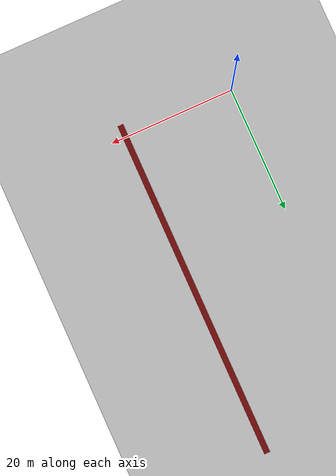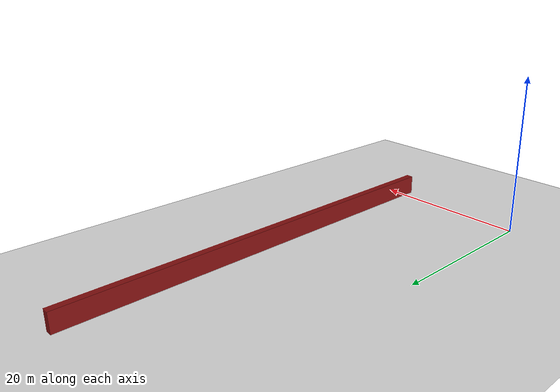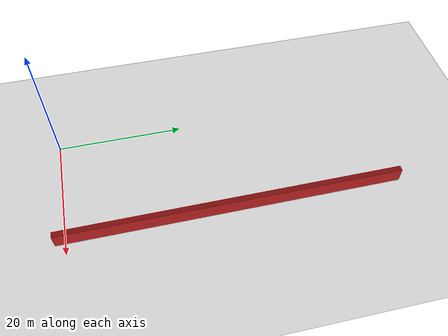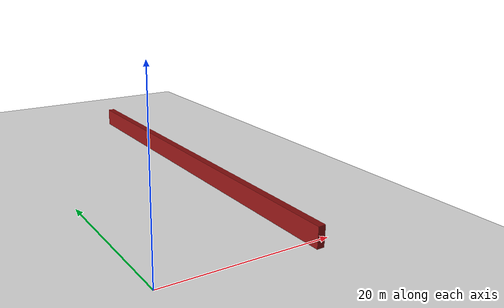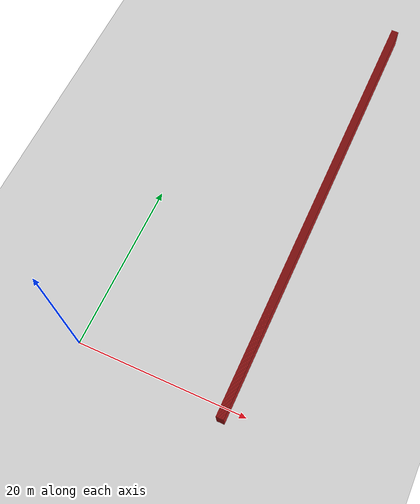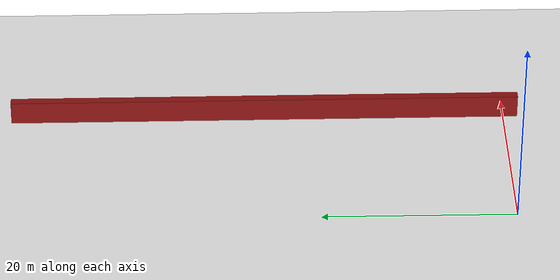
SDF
<sdf version="1.4">
 <world name="1_wall">
  <model name="ground_plane">
   <static>1</static>
   <link name="link">
    <collision name="collision">
     <geometry><plane><normal>0 0 1</normal><size>1000 1000</size></plane></geometry>
     <surface><friction><ode><mu>100</mu><mu2>50</mu2></ode></friction></surface>
    </collision>
    <visual name="visual">
     <cast_shadows>0</cast_shadows>
     <geometry><plane><normal>0 0 1</normal><size>10000 10000</size></plane></geometry>
     <material>
      <script><uri>file://media/materials/scripts/gazebo.material</uri><name>Gazebo/Grey</name></script>
     </material>
    </visual>
    <velocity_decay><linear>0</linear><angular>0</angular></velocity_decay>
   </link>
  </model>
  <model name="Wall_376">
   <static>1</static>
   <link name="Wall_376">
    <collision name="Wall_Collision_376">
     <geometry><box><size>53.65 0.05 2.5</size></box></geometry>
     <pose>0 0 1.25 0 -0 0</pose>
    </collision>
    <visual name="Wall_Visual_376">
     <pose>0 0 1.25 0 -0 0</pose>
     <geometry><box><size>53.65 0.05 2.5</size></box></geometry>
     <material>
      <script><uri>file://media/materials/scripts/gazebo.material</uri><name>Gazebo/Red</name></script>
     </material>
    </visual>
    <velocity_decay><linear>0</linear><angular>0</angular></velocity_decay>
    <pose>17.3 25.3 0 0 0 1.5707963267948966</pose>
   </link>
  </model>
  <model name="Wall_377">
   <static>1</static>
   <link name="Wall_377">
    <collision name="Wall_Collision_377">
     <geometry><box><size>53.65 0.05 2.5</size></box></geometry>
     <pose>0 0 1.25 0 -0 0</pose>
    </collision>
    <visual name="Wall_Visual_377">
     <pose>0 0 1.25 0 -0 0</pose>
     <geometry><box><size>53.65 0.05 2.5</size></box></geometry>
     <material>
      <script><uri>file://media/materials/scripts/gazebo.material</uri><name>Gazebo/Red</name></script>
     </material>
    </visual>
    <velocity_decay><linear>0</linear><angular>0</angular></velocity_decay>
    <pose>17.35 25.3 0 0 0 1.5707963267948966</pose>
   </link>
  </model>
  <model name="Wall_378">
   <static>1</static>
   <link name="Wall_378">
    <collision name="Wall_Collision_378">
     <geometry><box><size>53.65 0.05 2.5</size></box></geometry>
     <pose>0 0 1.25 0 -0 0</pose>
    </collision>
    <visual name="Wall_Visual_378">
     <pose>0 0 1.25 0 -0 0</pose>
     <geometry><box><size>53.65 0.05 2.5</size></box></geometry>
     <material>
      <script><uri>file://media/materials/scripts/gazebo.material</uri><name>Gazebo/Red</name></script>
     </material>
    </visual>
    <velocity_decay><linear>0</linear><angular>0</angular></velocity_decay>
    <pose>17.4 25.3 0 0 0 1.5707963267948966</pose>
   </link>
  </model>
  <model name="Wall_379">
   <static>1</static>
   <link name="Wall_379">
    <collision name="Wall_Collision_379">
     <geometry><box><size>53.65 0.05 2.5</size></box></geometry>
     <pose>0 0 1.25 0 -0 0</pose>
    </collision>
    <visual name="Wall_Visual_379">
     <pose>0 0 1.25 0 -0 0</pose>
     <geometry><box><size>53.65 0.05 2.5</size></box></geometry>
     <material>
      <script><uri>file://media/materials/scripts/gazebo.material</uri><name>Gazebo/Red</name></script>
     </material>
    </visual>
    <velocity_decay><linear>0</linear><angular>0</angular></velocity_decay>
    <pose>17.45 25.3 0 0 0 1.5707963267948966</pose>
   </link>
  </model>
  <model name="Wall_380">
   <static>1</static>
   <link name="Wall_380">
    <collision name="Wall_Collision_380">
     <geometry><box><size>53.65 0.05 2.5</size></box></geometry>
     <pose>0 0 1.25 0 -0 0</pose>
    </collision>
    <visual name="Wall_Visual_380">
     <pose>0 0 1.25 0 -0 0</pose>
     <geometry><box><size>53.65 0.05 2.5</size></box></geometry>
     <material>
      <script><uri>file://media/materials/scripts/gazebo.material</uri><name>Gazebo/Red</name></script>
     </material>
    </visual>
    <velocity_decay><linear>0</linear><angular>0</angular></velocity_decay>
    <pose>17.5 25.3 0 0 0 1.5707963267948966</pose>
   </link>
  </model>
  <model name="Wall_381">
   <static>1</static>
   <link name="Wall_381">
    <collision name="Wall_Collision_381">
     <geometry><box><size>53.65 0.05 2.5</size></box></geometry>
     <pose>0 0 1.25 0 -0 0</pose>
    </collision>
    <visual name="Wall_Visual_381">
     <pose>0 0 1.25 0 -0 0</pose>
     <geometry><box><size>53.65 0.05 2.5</size></box></geometry>
     <material>
      <script><uri>file://media/materials/scripts/gazebo.material</uri><name>Gazebo/Red</name></script>
     </material>
    </visual>
    <velocity_decay><linear>0</linear><angular>0</angular></velocity_decay>
    <pose>17.55 25.3 0 0 0 1.5707963267948966</pose>
   </link>
  </model>
  <model name="Wall_382">
   <static>1</static>
   <link name="Wall_382">
    <collision name="Wall_Collision_382">
     <geometry><box><size>53.65 0.05 2.5</size></box></geometry>
     <pose>0 0 1.25 0 -0 0</pose>
    </collision>
    <visual name="Wall_Visual_382">
     <pose>0 0 1.25 0 -0 0</pose>
     <geometry><box><size>53.65 0.05 2.5</size></box></geometry>
     <material>
      <script><uri>file://media/materials/scripts/gazebo.material</uri><name>Gazebo/Red</name></script>
     </material>
    </visual>
    <velocity_decay><linear>0</linear><angular>0</angular></velocity_decay>
    <pose>17.6 25.3 0 0 0 1.5707963267948966</pose>
   </link>
  </model>
  <model name="Wall_383">
   <static>1</static>
   <link name="Wall_383">
    <collision name="Wall_Collision_383">
     <geometry><box><size>53.65 0.05 2.5</size></box></geometry>
     <pose>0 0 1.25 0 -0 0</pose>
    </collision>
    <visual name="Wall_Visual_383">
     <pose>0 0 1.25 0 -0 0</pose>
     <geometry><box><size>53.65 0.05 2.5</size></box></geometry>
     <material>
      <script><uri>file://media/materials/scripts/gazebo.material</uri><name>Gazebo/Red</name></script>
     </material>
    </visual>
    <velocity_decay><linear>0</linear><angular>0</angular></velocity_decay>
    <pose>17.65 25.3 0 0 0 1.5707963267948966</pose>
   </link>
  </model>
  <model name="Wall_384">
   <static>1</static>
   <link name="Wall_384">
    <collision name="Wall_Collision_384">
     <geometry><box><size>53.65 0.05 2.5</size></box></geometry>
     <pose>0 0 1.25 0 -0 0</pose>
    </collision>
    <visual name="Wall_Visual_384">
     <pose>0 0 1.25 0 -0 0</pose>
     <geometry><box><size>53.65 0.05 2.5</size></box></geometry>
     <material>
      <script><uri>file://media/materials/scripts/gazebo.material</uri><name>Gazebo/Red</name></script>
     </material>
    </visual>
    <velocity_decay><linear>0</linear><angular>0</angular></velocity_decay>
    <pose>17.7 25.3 0 0 0 1.5707963267948966</pose>
   </link>
  </model>
  <model name="Wall_385">
   <static>1</static>
   <link name="Wall_385">
    <collision name="Wall_Collision_385">
     <geometry><box><size>53.65 0.05 2.5</size></box></geometry>
     <pose>0 0 1.25 0 -0 0</pose>
    </collision>
    <visual name="Wall_Visual_385">
     <pose>0 0 1.25 0 -0 0</pose>
     <geometry><box><size>53.65 0.05 2.5</size></box></geometry>
     <material>
      <script><uri>file://media/materials/scripts/gazebo.material</uri><name>Gazebo/Red</name></script>
     </material>
    </visual>
    <velocity_decay><linear>0</linear><angular>0</angular></velocity_decay>
    <pose>17.75 25.3 0 0 0 1.5707963267948966</pose>
   </link>
  </model>
  <model name="Wall_386">
   <static>1</static>
   <link name="Wall_386">
    <collision name="Wall_Collision_386">
     <geometry><box><size>53.65 0.05 2.5</size></box></geometry>
     <pose>0 0 1.25 0 -0 0</pose>
    </collision>
    <visual name="Wall_Visual_386">
     <pose>0 0 1.25 0 -0 0</pose>
     <geometry><box><size>53.65 0.05 2.5</size></box></geometry>
     <material>
      <script><uri>file://media/materials/scripts/gazebo.material</uri><name>Gazebo/Red</name></script>
     </material>
    </visual>
    <velocity_decay><linear>0</linear><angular>0</angular></velocity_decay>
    <pose>17.8 25.3 0 0 0 1.5707963267948966</pose>
   </link>
  </model>
  <model name="Wall_387">
   <static>1</static>
   <link name="Wall_387">
    <collision name="Wall_Collision_387">
     <geometry><box><size>53.65 0.05 2.5</size></box></geometry>
     <pose>0 0 1.25 0 -0 0</pose>
    </collision>
    <visual name="Wall_Visual_387">
     <pose>0 0 1.25 0 -0 0</pose>
     <geometry><box><size>53.65 0.05 2.5</size></box></geometry>
     <material>
      <script><uri>file://media/materials/scripts/gazebo.material</uri><name>Gazebo/Red</name></script>
     </material>
    </visual>
    <velocity_decay><linear>0</linear><angular>0</angular></velocity_decay>
    <pose>17.85 25.3 0 0 0 1.5707963267948966</pose>
   </link>
  </model>
  <model name="Wall_388">
   <static>1</static>
   <link name="Wall_388">
    <collision name="Wall_Collision_388">
     <geometry><box><size>53.65 0.05 2.5</size></box></geometry>
     <pose>0 0 1.25 0 -0 0</pose>
    </collision>
    <visual name="Wall_Visual_388">
     <pose>0 0 1.25 0 -0 0</pose>
     <geometry><box><size>53.65 0.05 2.5</size></box></geometry>
     <material>
      <script><uri>file://media/materials/scripts/gazebo.material</uri><name>Gazebo/Red</name></script>
     </material>
    </visual>
    <velocity_decay><linear>0</linear><angular>0</angular></velocity_decay>
    <pose>17.9 25.3 0 0 0 1.5707963267948966</pose>
   </link>
  </model>
  <model name="Wall_389">
   <static>1</static>
   <link name="Wall_389">
    <collision name="Wall_Collision_389">
     <geometry><box><size>53.65 0.05 2.5</size></box></geometry>
     <pose>0 0 1.25 0 -0 0</pose>
    </collision>
    <visual name="Wall_Visual_389">
     <pose>0 0 1.25 0 -0 0</pose>
     <geometry><box><size>53.65 0.05 2.5</size></box></geometry>
     <material>
      <script><uri>file://media/materials/scripts/gazebo.material</uri><name>Gazebo/Red</name></script>
     </material>
    </visual>
    <velocity_decay><linear>0</linear><angular>0</angular></velocity_decay>
    <pose>17.95 25.3 0 0 0 1.5707963267948966</pose>
   </link>
  </model>
  <model name="Wall_390">
   <static>1</static>
   <link name="Wall_390">
    <collision name="Wall_Collision_390">
     <geometry><box><size>53.65 0.05 2.5</size></box></geometry>
     <pose>0 0 1.25 0 -0 0</pose>
    </collision>
    <visual name="Wall_Visual_390">
     <pose>0 0 1.25 0 -0 0</pose>
     <geometry><box><size>53.65 0.05 2.5</size></box></geometry>
     <material>
      <script><uri>file://media/materials/scripts/gazebo.material</uri><name>Gazebo/Red</name></script>
     </material>
    </visual>
    <velocity_decay><linear>0</linear><angular>0</angular></velocity_decay>
    <pose>18.0 25.3 0 0 0 1.5707963267948966</pose>
   </link>
  </model>
  <model name="Wall_391">
   <static>1</static>
   <link name="Wall_391">
    <collision name="Wall_Collision_391">
     <geometry><box><size>53.65 0.05 2.5</size></box></geometry>
     <pose>0 0 1.25 0 -0 0</pose>
    </collision>
    <visual name="Wall_Visual_391">
     <pose>0 0 1.25 0 -0 0</pose>
     <geometry><box><size>53.65 0.05 2.5</size></box></geometry>
     <material>
      <script><uri>file://media/materials/scripts/gazebo.material</uri><name>Gazebo/Red</name></script>
     </material>
    </visual>
    <velocity_decay><linear>0</linear><angular>0</angular></velocity_decay>
    <pose>18.05 25.3 0 0 0 1.5707963267948966</pose>
   </link>
  </model>
  <model name="Wall_392">
   <static>1</static>
   <link name="Wall_392">
    <collision name="Wall_Collision_392">
     <geometry><box><size>53.65 0.05 2.5</size></box></geometry>
     <pose>0 0 1.25 0 -0 0</pose>
    </collision>
    <visual name="Wall_Visual_392">
     <pose>0 0 1.25 0 -0 0</pose>
     <geometry><box><size>53.65 0.05 2.5</size></box></geometry>
     <material>
      <script><uri>file://media/materials/scripts/gazebo.material</uri><name>Gazebo/Red</name></script>
     </material>
    </visual>
    <velocity_decay><linear>0</linear><angular>0</angular></velocity_decay>
    <pose>18.1 25.3 0 0 0 1.5707963267948966</pose>
   </link>
  </model>
  <model name="Wall_393">
   <static>1</static>
   <link name="Wall_393">
    <collision name="Wall_Collision_393">
     <geometry><box><size>53.65 0.05 2.5</size></box></geometry>
     <pose>0 0 1.25 0 -0 0</pose>
    </collision>
    <visual name="Wall_Visual_393">
     <pose>0 0 1.25 0 -0 0</pose>
     <geometry><box><size>53.65 0.05 2.5</size></box></geometry>
     <material>
      <script><uri>file://media/materials/scripts/gazebo.material</uri><name>Gazebo/Red</name></script>
     </material>
    </visual>
    <velocity_decay><linear>0</linear><angular>0</angular></velocity_decay>
    <pose>18.15 25.3 0 0 0 1.5707963267948966</pose>
   </link>
  </model>
 </world>
</sdf>
